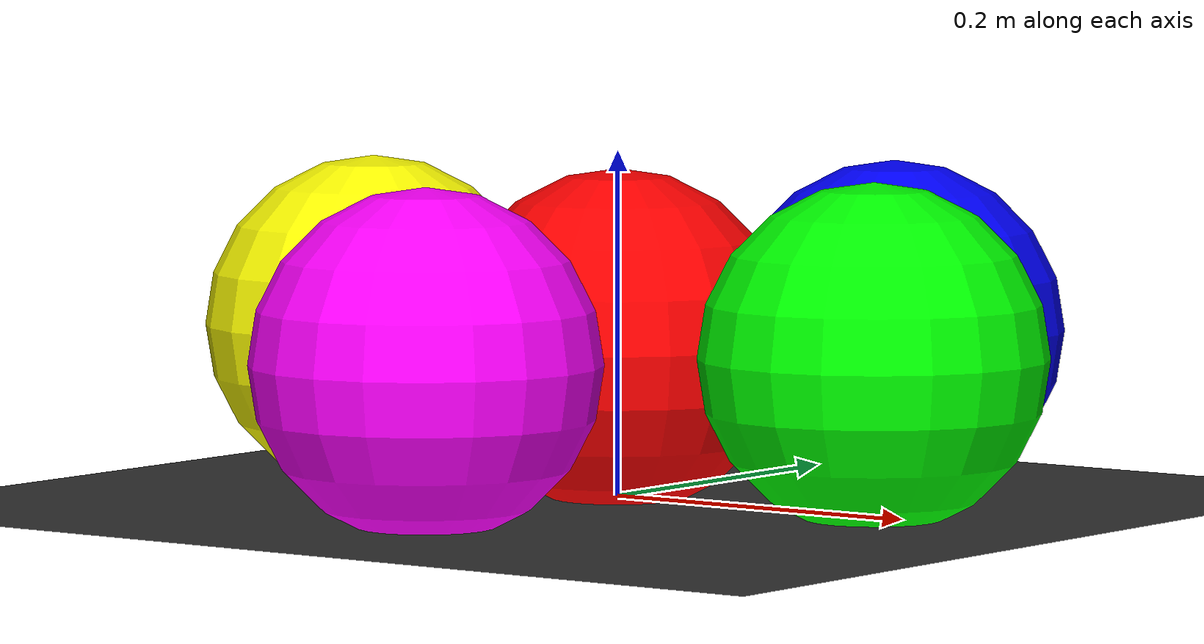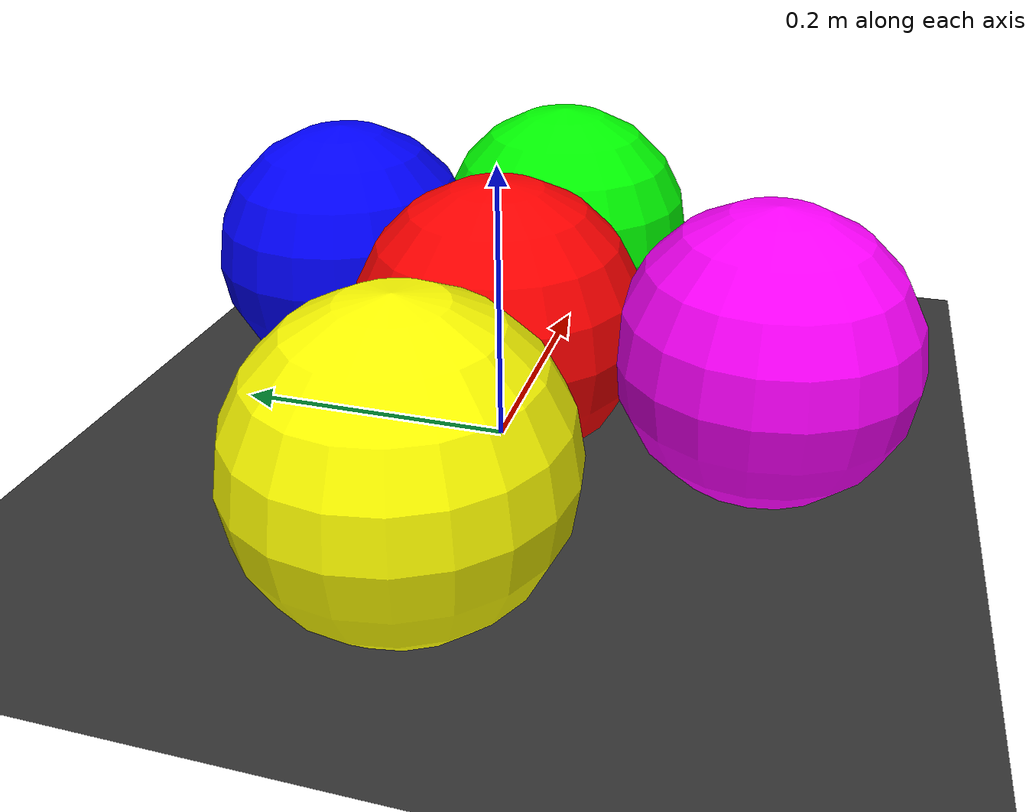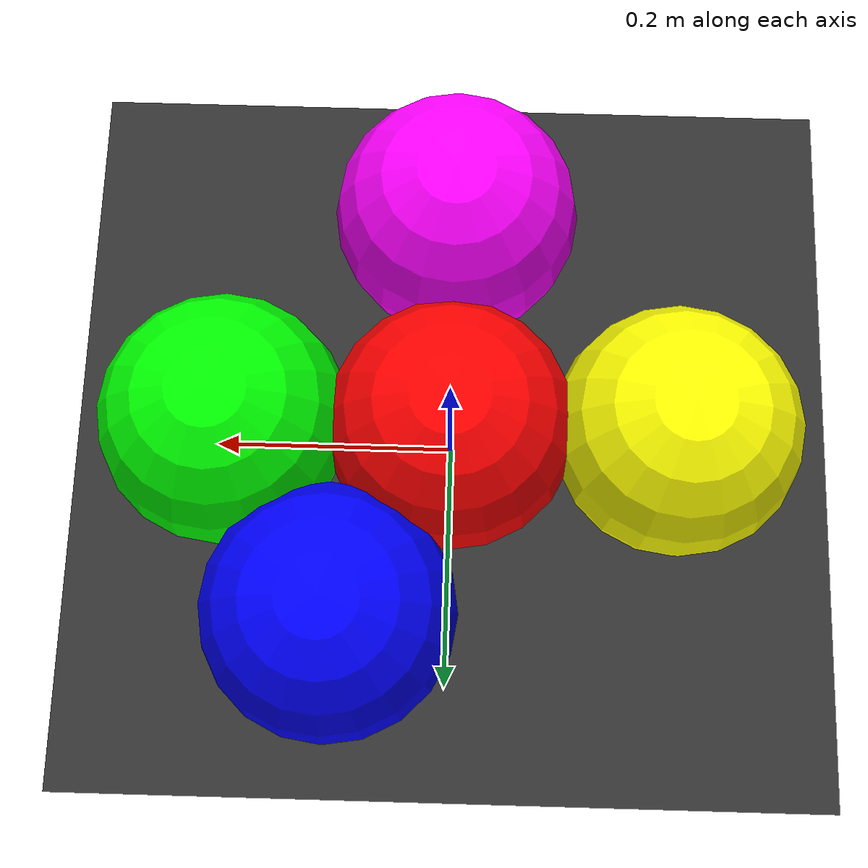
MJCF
<mujoco model="five_contacts">
    <option gravity="0 0 -9.81" integrator="Euler" timestep="0.01"/>
    <size njmax="50" nconmax="50"/>

    <worldbody>
        <!-- Static floor -->
        <geom name="floor" type="plane" pos="0 0 0" size="50 50 0.1" rgba="0.2 0.2 0.2 1" condim="3"/>

        <!-- Cluster of 5 overlapping spheres -->
        <body name="sphere_0" pos="0 0 0.09">
            <geom type="sphere" size="0.1" rgba="1 0 0 1"/>
            <freejoint/>
        </body>

        <body name="sphere_1" pos="0.18 0 0.09">
            <geom type="sphere" size="0.1" rgba="0 1 0 1"/>
            <freejoint/>
        </body>

        <body name="sphere_2" pos="0.09 0.15 0.09">
            <geom type="sphere" size="0.1" rgba="0 0 1 1"/>
            <freejoint/>
        </body>

        <body name="sphere_3" pos="-0.18 0 0.09">
            <geom type="sphere" size="0.1" rgba="1 1 0 1"/>
            <freejoint/>
        </body>

        <body name="sphere_4" pos="0 -0.18 0.09">
            <geom type="sphere" size="0.1" rgba="1 0 1 1"/>
            <freejoint/>
        </body>
    </worldbody>
</mujoco>
